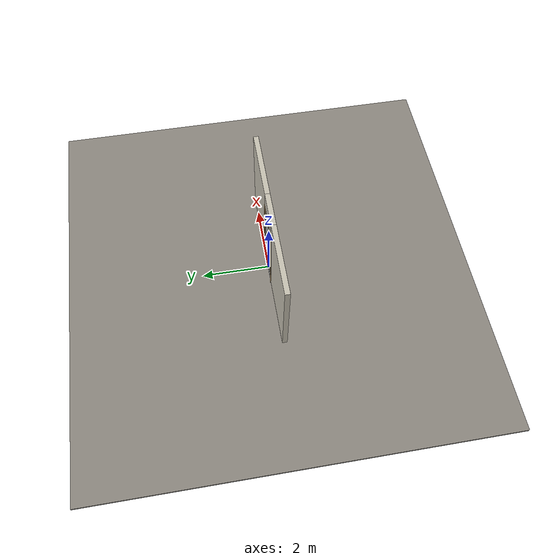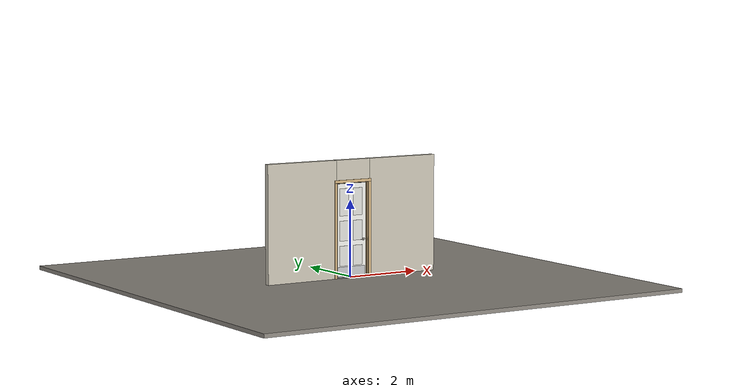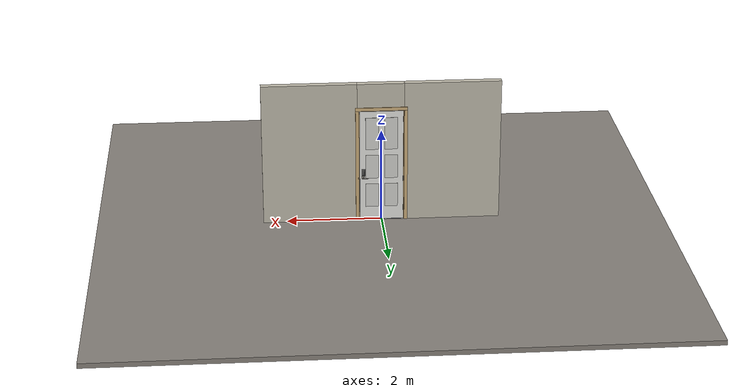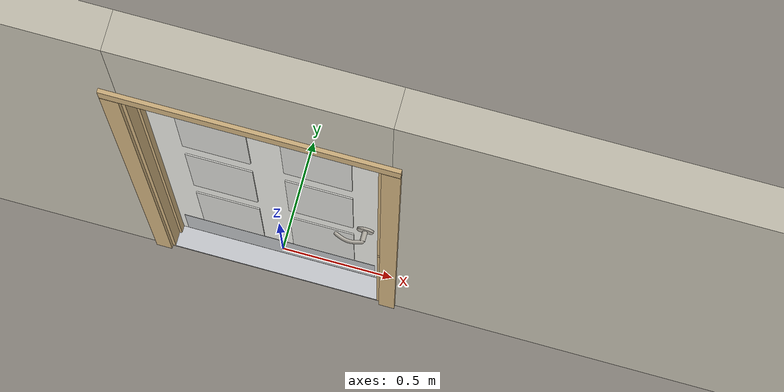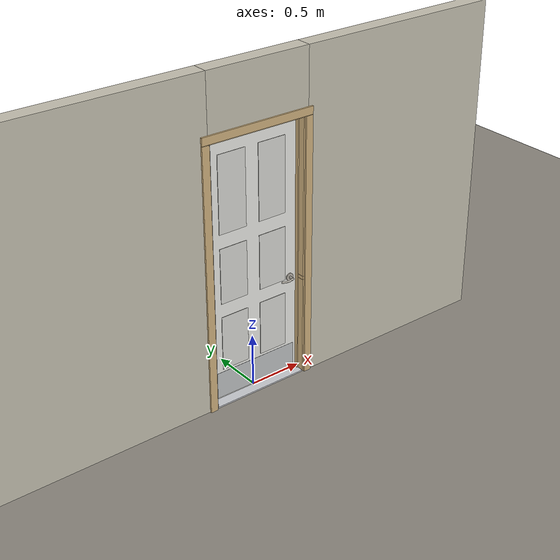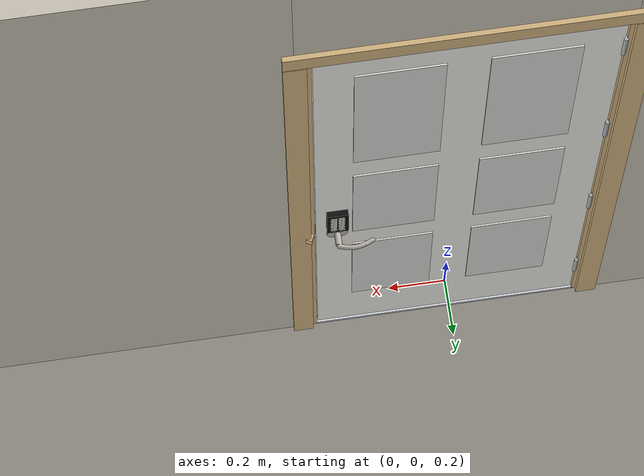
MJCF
<?xml version="1.0" ?>
<mujoco model="db0503_swing_single_full">
  <compiler angle="radian" meshdir="../../hardware" texturedir="../../textures" autolimits="true" inertiafromgeom="false"/>
  <option timestep="0.002" integrator="implicitfast" cone="elliptic" impratio="10" noslip_iterations="3">
    <flag multiccd="enable"/>
  </option>
  <size memory="16M"/>
  <default>
    <geom condim="4" solref="0.005 1" solimp="0.95 0.99 0.001"/>
    <joint solreflimit="0.005 1" solimplimit="0.95 0.99 0.001"/>
    <tendon solreflimit="0.005 1"/>
    <equality solref="0.002 1"/>
  </default>
  <visual>
    <headlight ambient="0.4 0.4 0.4" diffuse="0.7 0.7 0.7" specular="0.2 0.2 0.2"/>
    <quality shadowsize="4096"/>
    <map znear="0.01" zfar="60"/>
  </visual>
  <asset>
    <mesh name="hinge_e22b26c0c1" file="hinge_e22b26c0c1.obj"/>
    <mesh name="hinge_jamb_e1d088f8dc" file="hinge_jamb_e1d088f8dc.obj"/>
    <mesh name="keypad_body_3b2d063948" file="keypad_body_3b2d063948.obj"/>
    <mesh name="lever_a61139b160" file="lever_a61139b160.obj"/>
    <material name="mat_floor" rgba="0.55 0.53 0.5 1" specular="0.2" shininess="0.15" reflectance="0"/>
    <material name="mat_wall" rgba="0.78 0.76 0.7 1" specular="0.2" shininess="0.1" reflectance="0"/>
    <material name="mat_leaf" rgba="0.93 0.93 0.91 1" specular="0.2" shininess="0.34" reflectance="0"/>
    <material name="mat_leaf_panel" rgba="0.856 0.856 0.837 1" specular="0.2" shininess="0.34" reflectance="0"/>
    <material name="mat_hinge" rgba="0.65 0.66 0.68 1" specular="0.74" shininess="0.5" reflectance="0.36"/>
    <material name="mat_op_nickel_satin" rgba="0.72 0.7 0.66 1" specular="0.8" shininess="0.65" reflectance="0.4"/>
    <material name="mat_trim" rgba="0.85 0.66 0.3 1" specular="0.8" shininess="0.75" reflectance="0.4"/>
    <material name="mat_keypad" rgba="0.05 0.05 0.05 1" specular="0.38" shininess="0.3" reflectance="0.12"/>
    <material name="mat_key" rgba="0.85 0.85 0.82 1" specular="0.2" shininess="0.5" reflectance="0"/>
    <material name="mat_bolt" rgba="0.85 0.66 0.3 1" specular="0.8" shininess="0.75" reflectance="0.4"/>
    <material name="mat_frame" rgba="0.82 0.7 0.5 1" specular="0.2" shininess="0.45" reflectance="0"/>
    <material name="mat_seal" rgba="0.1 0.1 0.1 1" specular="0.2" shininess="0.1" reflectance="0"/>
    <material name="mat_threshold" rgba="0.8 0.81 0.83 1" specular="0.8" shininess="0.6" reflectance="0.4"/>
    <material name="mat_kick" rgba="0.75 0.76 0.77 1" specular="0.8" shininess="0.65" reflectance="0.4"/>
    <texture name="skybox" type="skybox" builtin="gradient" rgb1="0.6 0.7 0.85" rgb2="0.9 0.92 0.95" width="256" height="256"/>
  </asset>
  <worldbody>
    <light name="sun" pos="1.5 -2.5 4" dir="-0.3 0.5 -0.8" directional="true" diffuse="0.8 0.8 0.8" specular="0.3 0.3 0.3" castshadow="true"/>
    <light name="fill" pos="-1.5 2.5 3" dir="0.3 -0.5 -0.7" directional="true" diffuse="0.35 0.35 0.4" castshadow="false"/>
    <camera name="robot_view" pos="0 -2.966312 2.043887" xyaxes="1 0 0 0 0.26963 0.962964" fovy="52"/>
    <camera name="far_view" pos="0 2.879313 2.043887" xyaxes="-1 0 0 0 -0.26963 0.962964" fovy="52"/>
    <camera name="iso" pos="2.221337 -2.498663 2.511538" xyaxes="0.741536 0.670913 0 -0.242917 0.268487 0.932151" fovy="46"/>
    <camera name="detail_handle" pos="0.4769 -0.877 1.245" xyaxes="0.97561 0.219512 0 -0.070934 0.315262 0.94635" fovy="38"/>
    <geom name="floor" type="box" size="6 6 0.05" pos="0 0 -0.05" material="mat_floor" group="0" contype="1" conaffinity="1" friction="0.8 0.005 0.0001" density="2400"/>
    <geom name="wall_left" type="box" size="1.01025 0.0725 1.5255" pos="-1.48975 -0.0435 1.5255" material="mat_wall" group="0" contype="1" conaffinity="1" friction="0.6 0.005 0.0001" density="800"/>
    <geom name="wall_right" type="box" size="0.99525 0.0725 1.5255" pos="1.50475 -0.0435 1.5255" material="mat_wall" group="0" contype="1" conaffinity="1" friction="0.6 0.005 0.0001" density="800"/>
    <geom name="wall_header" type="box" size="0.4945 0.0725 0.2755" pos="0.015 -0.0435 2.7755" material="mat_wall" group="0" contype="1" conaffinity="1" friction="0.6 0.005 0.0001" density="800"/>
    <geom name="hinge_0_jamb" type="mesh" mesh="hinge_jamb_e1d088f8dc" pos="-0.4575 0.029 0.267" quat="0 1 0 0" material="mat_hinge" group="1" contype="0" conaffinity="0" density="7850"/>
    <geom name="hinge_1_jamb" type="mesh" mesh="hinge_jamb_e1d088f8dc" pos="-0.4575 0.029 0.933667" quat="0 1 0 0" material="mat_hinge" group="1" contype="0" conaffinity="0" density="7850"/>
    <geom name="hinge_2_jamb" type="mesh" mesh="hinge_jamb_e1d088f8dc" pos="-0.4575 0.029 1.600333" quat="0 1 0 0" material="mat_hinge" group="1" contype="0" conaffinity="0" density="7850"/>
    <geom name="hinge_3_jamb" type="mesh" mesh="hinge_jamb_e1d088f8dc" pos="-0.4575 0.029 2.267" quat="0 1 0 0" material="mat_hinge" group="1" contype="0" conaffinity="0" density="7850"/>
    <geom name="jamb_hinge" type="box" size="0.0095 0.0725 1.2255" pos="-0.47 -0.0435 1.2255" material="mat_frame" group="0" contype="1" conaffinity="1" friction="0.6 0.005 0.0001" density="400"/>
    <geom name="strike_965_wall_n" type="box" size="0.0245 0.054075 0.0167" pos="0.485 -0.061925 0.965" material="mat_frame" group="0" contype="1" conaffinity="1" friction="0.6 0.005 0.0001" density="400"/>
    <geom name="strike_965_wall_p" type="box" size="0.0245 0.008 0.0167" pos="0.485 0.01585 0.965" material="mat_frame" group="0" contype="1" conaffinity="1" friction="0.6 0.005 0.0001" density="400"/>
    <geom name="strike_965_ramp" type="box" size="0.0245 0.01649 0.0167" pos="0.489636 0.028673 0.965" quat="0.977148 0 0 -0.212558" material="mat_frame" group="0" contype="1" conaffinity="1" friction="0.12 0.005 0.0001" density="400"/>
    <geom name="strike_965_back" type="box" size="0.01615 0.00785 0.0167" pos="0.49335 0 0.965" material="mat_frame" group="0" contype="1" conaffinity="1" friction="0.6 0.005 0.0001" density="400"/>
    <geom name="jamb_strike_0" type="box" size="0.0245 0.0725 0.47415" pos="0.485 -0.0435 0.47415" material="mat_frame" group="0" contype="1" conaffinity="1" friction="0.6 0.005 0.0001" density="400"/>
    <geom name="jamb_strike_1" type="box" size="0.0245 0.0725 0.73465" pos="0.485 -0.0435 1.71635" material="mat_frame" group="0" contype="1" conaffinity="1" friction="0.6 0.005 0.0001" density="400"/>
    <geom name="jamb_head" type="box" size="0.4945 0.0725 0.0095" pos="0.015 -0.0435 2.4605" material="mat_frame" group="0" contype="1" conaffinity="1" friction="0.6 0.005 0.0001" density="400"/>
    <geom name="head_stud" type="box" size="0.4945 0.0725 0.015" pos="0.015 -0.0435 2.485" material="mat_wall" group="0" contype="1" conaffinity="1" friction="0.6 0.005 0.0001" density="500"/>
    <geom name="stop_hinge" type="box" size="0.0055 0.016 1.2255" pos="-0.455 -0.0385 1.2255" material="mat_frame" group="0" contype="1" conaffinity="1" friction="0.6 0.005 0.0001" density="400"/>
    <geom name="stop_strike" type="box" size="0.0055 0.016 1.2255" pos="0.455 -0.0385 1.2255" material="mat_frame" group="0" contype="1" conaffinity="1" friction="0.6 0.005 0.0001" density="400"/>
    <geom name="stop_head" type="box" size="0.4605 0.016 0.0055" pos="0 -0.0385 2.4455" material="mat_frame" group="0" contype="1" conaffinity="1" friction="0.6 0.005 0.0001" density="400"/>
    <geom name="seal_hinge" type="box" size="0.004 0.0015 1.2255" pos="-0.4575 -0.0235 1.2255" material="mat_seal" group="1" contype="0" conaffinity="0" density="1100"/>
    <geom name="seal_strike" type="box" size="0.004 0.0015 1.2255" pos="0.4575 -0.0235 1.2255" material="mat_seal" group="1" contype="0" conaffinity="0" density="1100"/>
    <geom name="seal_head" type="box" size="0.4405 0.0015 0.008" pos="0 -0.0235 2.439" material="mat_seal" group="1" contype="0" conaffinity="0" density="1100"/>
    <geom name="casing_l_n" type="box" size="0.035 0.008 1.235" pos="-0.5095 -0.124 1.2255" material="mat_frame" group="2" contype="0" conaffinity="0" density="400"/>
    <geom name="casing_r_n" type="box" size="0.035 0.008 1.235" pos="0.5095 -0.124 1.2255" material="mat_frame" group="2" contype="0" conaffinity="0" density="400"/>
    <geom name="casing_h_n" type="box" size="0.5445 0.008 0.035" pos="0 -0.124 2.5" material="mat_frame" group="2" contype="0" conaffinity="0" density="400"/>
    <geom name="casing_l_p" type="box" size="0.035 0.008 1.235" pos="-0.5095 0.037 1.2255" material="mat_frame" group="2" contype="0" conaffinity="0" density="400"/>
    <geom name="casing_r_p" type="box" size="0.035 0.008 1.235" pos="0.5095 0.037 1.2255" material="mat_frame" group="2" contype="0" conaffinity="0" density="400"/>
    <geom name="casing_h_p" type="box" size="0.5445 0.008 0.035" pos="0 0.037 2.5" material="mat_frame" group="2" contype="0" conaffinity="0" density="400"/>
    <geom name="threshold" type="box" size="0.4795 0.0725 0.0065" pos="0 -0.0435 0.0065" material="mat_threshold" group="0" contype="1" conaffinity="1" friction="0.5 0.005 0.0001" density="2700"/>
    <site name="approach_point" pos="0 -1.5 0" quat="1 0 0 0" size="0.05" rgba="0.2 0.9 0.2 0.5" group="4"/>
    <site name="goal_point" pos="0 1.5 0" quat="1 0 0 0" size="0.05" rgba="0.2 0.9 0.2 0.5" group="4"/>
    <site name="door_plane_center" pos="0 0 1.2255" quat="1 0 0 0" size="0.02" rgba="0.2 0.9 0.2 0.5" group="4"/>
    <body name="leaf" pos="-0.4605 0 0">
      <inertial pos="0.450708 -0.001052 1.131437" mass="28.015384" quat="-0.497454 0.500032 0.501923 0.500581" diaginertia="2.0933994 15.128624736 17.210204509"/>
      <joint name="leaf_hinge" type="hinge" axis="0 0 1" pos="0.003 0.029 0" limited="true" range="0 1.745329" solreflimit="0.02 1" damping="0.357281" frictionloss="7.16398" armature="0.02"/>
      <geom name="leaf_slab" type="box" size="0.457 0.022 1.215" pos="0.46 0 1.232" material="mat_leaf" group="0" contype="1" conaffinity="1" friction="0.4 0.005 0.0001" density="1"/>
      <geom name="leaf_panel_0_n" type="box" size="0.13573 0.003 0.25918" pos="0.25927 -0.025 0.56348" material="mat_leaf_panel" group="1" contype="0" conaffinity="0" density="1"/>
      <geom name="leaf_panel_0_p" type="box" size="0.13573 0.003 0.25918" pos="0.25927 0.025 0.56348" material="mat_leaf_panel" group="1" contype="0" conaffinity="0" density="1"/>
      <geom name="leaf_panel_1_n" type="box" size="0.13573 0.003 0.25918" pos="0.66073 -0.025 0.56348" material="mat_leaf_panel" group="1" contype="0" conaffinity="0" density="1"/>
      <geom name="leaf_panel_1_p" type="box" size="0.13573 0.003 0.25918" pos="0.66073 0.025 0.56348" material="mat_leaf_panel" group="1" contype="0" conaffinity="0" density="1"/>
      <geom name="leaf_panel_2_n" type="box" size="0.13573 0.003 0.25918" pos="0.25927 -0.025 1.21184" material="mat_leaf_panel" group="1" contype="0" conaffinity="0" density="1"/>
      <geom name="leaf_panel_2_p" type="box" size="0.13573 0.003 0.25918" pos="0.25927 0.025 1.21184" material="mat_leaf_panel" group="1" contype="0" conaffinity="0" density="1"/>
      <geom name="leaf_panel_3_n" type="box" size="0.13573 0.003 0.25918" pos="0.66073 -0.025 1.21184" material="mat_leaf_panel" group="1" contype="0" conaffinity="0" density="1"/>
      <geom name="leaf_panel_3_p" type="box" size="0.13573 0.003 0.25918" pos="0.66073 0.025 1.21184" material="mat_leaf_panel" group="1" contype="0" conaffinity="0" density="1"/>
      <geom name="leaf_panel_4_n" type="box" size="0.13573 0.003 0.35224" pos="0.25927 -0.025 1.95326" material="mat_leaf_panel" group="1" contype="0" conaffinity="0" density="1"/>
      <geom name="leaf_panel_4_p" type="box" size="0.13573 0.003 0.35224" pos="0.25927 0.025 1.95326" material="mat_leaf_panel" group="1" contype="0" conaffinity="0" density="1"/>
      <geom name="leaf_panel_5_n" type="box" size="0.13573 0.003 0.35224" pos="0.66073 -0.025 1.95326" material="mat_leaf_panel" group="1" contype="0" conaffinity="0" density="1"/>
      <geom name="leaf_panel_5_p" type="box" size="0.13573 0.003 0.35224" pos="0.66073 0.025 1.95326" material="mat_leaf_panel" group="1" contype="0" conaffinity="0" density="1"/>
      <geom name="hinge_0" type="mesh" mesh="hinge_e22b26c0c1" pos="0.003 0.029 0.267" quat="0 1 0 0" material="mat_hinge" group="1" contype="0" conaffinity="0" density="7850"/>
      <geom name="hinge_1" type="mesh" mesh="hinge_e22b26c0c1" pos="0.003 0.029 0.933667" quat="0 1 0 0" material="mat_hinge" group="1" contype="0" conaffinity="0" density="7850"/>
      <geom name="hinge_2" type="mesh" mesh="hinge_e22b26c0c1" pos="0.003 0.029 1.600333" quat="0 1 0 0" material="mat_hinge" group="1" contype="0" conaffinity="0" density="7850"/>
      <geom name="hinge_3" type="mesh" mesh="hinge_e22b26c0c1" pos="0.003 0.029 2.267" quat="0 1 0 0" material="mat_hinge" group="1" contype="0" conaffinity="0" density="7850"/>
      <geom name="leaf_keypad_body" type="mesh" mesh="keypad_body_3b2d063948" pos="0.847 0.022 1.085" quat="0 0 0.707107 0.707107" material="mat_keypad" group="0" contype="1" conaffinity="1" friction="0.6 0.005 0.0001" density="2000"/>
      <geom name="leaf_latch_bolt_faceplate" type="box" size="0.0006 0.01235 0.0267" pos="0.9164 0 0.965" material="mat_bolt" group="1" contype="0" conaffinity="0" density="8500"/>
      <geom name="kick_plate_n" type="box" size="0.427 0.0008 0.125" pos="0.46 -0.0228 0.152" material="mat_kick" group="2" contype="0" conaffinity="0" density="7900"/>
      <site name="leaf_edge_mid" pos="0.917 0 1.215" quat="1 0 0 0" size="0.02" rgba="0.2 0.9 0.2 0.5" group="4"/>
      <body name="leaf_handle" pos="0.847 0 0.965">
        <inertial pos="-0.022132 -0.050687 0" mass="0.463269" quat="-0.312008 0 0 0.950079" diaginertia="0.000227859 0.000847742 0.000992066"/>
        <joint name="leaf_handle_hinge" type="hinge" axis="0 -1 0" limited="true" range="0 0.87" damping="0.208392" frictionloss="0.052" stiffness="1" springref="-0.35" armature="0.01"/>
        <geom name="leaf_handle_spindle" type="cylinder" size="0.006 0.03" pos="0 0 0" quat="0.707107 -0.707107 0 0" material="mat_op_nickel_satin" group="1" contype="0" conaffinity="0" density="7850"/>
        <geom name="leaf_handle_lever_n" type="mesh" mesh="lever_a61139b160" pos="0 -0.022 0" quat="0.707107 0.707107 0 0" material="mat_op_nickel_satin" group="1" contype="0" conaffinity="0" density="3000"/>
        <geom name="leaf_handle_lever_col_n" type="capsule" size="0.008 0.048" pos="-0.056 -0.077 0" quat="0.707107 0 -0.707107 0" material="mat_op_nickel_satin" group="3" contype="1" conaffinity="1" rgba="0.8 0.3 0.3 0.25" friction="0.7 0.01 0.0001" density="3000"/>
        <geom name="leaf_handle_hub_col_n" type="cylinder" size="0.012 0.022" pos="0 -0.052 0" quat="0.707107 -0.707107 0 0" material="mat_op_nickel_satin" group="3" contype="1" conaffinity="1" rgba="0.8 0.3 0.3 0.25" friction="0.6 0.005 0.0001" density="3000"/>
        <site name="leaf_handle_grip_n" pos="-0.0896 -0.077 0" quat="1 0 0 0" size="0.012" rgba="0.2 0.9 0.2 0.5" group="4"/>
      </body>
      <body name="leaf_keypad_key_1" pos="0.86 0.042 1.133">
        <inertial pos="0 0.0015 0" mass="0.001008" quat="0 0 0.707107 0.707107" diaginertia="0.000000017 0.000000034 0.00000005"/>
        <joint name="leaf_keypad_key_1_slide" type="slide" axis="0 -1 0" limited="true" range="0 0.0015" damping="14" frictionloss="0.05" stiffness="1000" springref="-0.0015" armature="0.1"/>
        <geom name="leaf_keypad_key_1_geom" type="box" size="0.01 0.0015 0.007" pos="0 0.0015 0" material="mat_key" group="0" contype="1" conaffinity="1" friction="0.6 0.005 0.0001" density="1200"/>
        <site name="leaf_keypad_key_1_press" pos="0 0.005 0" quat="1 0 0 0" size="0.008" rgba="0.2 0.9 0.2 0.5" group="4"/>
      </body>
      <body name="leaf_keypad_key_2" pos="0.834 0.042 1.133">
        <inertial pos="0 0.0015 0" mass="0.001008" quat="0 0 0.707107 0.707107" diaginertia="0.000000017 0.000000034 0.00000005"/>
        <joint name="leaf_keypad_key_2_slide" type="slide" axis="0 -1 0" limited="true" range="0 0.0015" damping="14" frictionloss="0.05" stiffness="1000" springref="-0.0015" armature="0.1"/>
        <geom name="leaf_keypad_key_2_geom" type="box" size="0.01 0.0015 0.007" pos="0 0.0015 0" material="mat_key" group="0" contype="1" conaffinity="1" friction="0.6 0.005 0.0001" density="1200"/>
        <site name="leaf_keypad_key_2_press" pos="0 0.005 0" quat="1 0 0 0" size="0.008" rgba="0.2 0.9 0.2 0.5" group="4"/>
      </body>
      <body name="leaf_keypad_key_3" pos="0.86 0.042 1.109">
        <inertial pos="0 0.0015 0" mass="0.001008" quat="0 0 0.707107 0.707107" diaginertia="0.000000017 0.000000034 0.00000005"/>
        <joint name="leaf_keypad_key_3_slide" type="slide" axis="0 -1 0" limited="true" range="0 0.0015" damping="14" frictionloss="0.05" stiffness="1000" springref="-0.0015" armature="0.1"/>
        <geom name="leaf_keypad_key_3_geom" type="box" size="0.01 0.0015 0.007" pos="0 0.0015 0" material="mat_key" group="0" contype="1" conaffinity="1" friction="0.6 0.005 0.0001" density="1200"/>
        <site name="leaf_keypad_key_3_press" pos="0 0.005 0" quat="1 0 0 0" size="0.008" rgba="0.2 0.9 0.2 0.5" group="4"/>
      </body>
      <body name="leaf_keypad_key_4" pos="0.834 0.042 1.109">
        <inertial pos="0 0.0015 0" mass="0.001008" quat="0 0 0.707107 0.707107" diaginertia="0.000000017 0.000000034 0.00000005"/>
        <joint name="leaf_keypad_key_4_slide" type="slide" axis="0 -1 0" limited="true" range="0 0.0015" damping="14" frictionloss="0.05" stiffness="1000" springref="-0.0015" armature="0.1"/>
        <geom name="leaf_keypad_key_4_geom" type="box" size="0.01 0.0015 0.007" pos="0 0.0015 0" material="mat_key" group="0" contype="1" conaffinity="1" friction="0.6 0.005 0.0001" density="1200"/>
        <site name="leaf_keypad_key_4_press" pos="0 0.005 0" quat="1 0 0 0" size="0.008" rgba="0.2 0.9 0.2 0.5" group="4"/>
      </body>
      <body name="leaf_keypad_key_5" pos="0.86 0.042 1.085">
        <inertial pos="0 0.0015 0" mass="0.001008" quat="0 0 0.707107 0.707107" diaginertia="0.000000017 0.000000034 0.00000005"/>
        <joint name="leaf_keypad_key_5_slide" type="slide" axis="0 -1 0" limited="true" range="0 0.0015" damping="14" frictionloss="0.05" stiffness="1000" springref="-0.0015" armature="0.1"/>
        <geom name="leaf_keypad_key_5_geom" type="box" size="0.01 0.0015 0.007" pos="0 0.0015 0" material="mat_key" group="0" contype="1" conaffinity="1" friction="0.6 0.005 0.0001" density="1200"/>
        <site name="leaf_keypad_key_5_press" pos="0 0.005 0" quat="1 0 0 0" size="0.008" rgba="0.2 0.9 0.2 0.5" group="4"/>
      </body>
      <body name="leaf_keypad_key_6" pos="0.834 0.042 1.085">
        <inertial pos="0 0.0015 0" mass="0.001008" quat="0 0 0.707107 0.707107" diaginertia="0.000000017 0.000000034 0.00000005"/>
        <joint name="leaf_keypad_key_6_slide" type="slide" axis="0 -1 0" limited="true" range="0 0.0015" damping="14" frictionloss="0.05" stiffness="1000" springref="-0.0015" armature="0.1"/>
        <geom name="leaf_keypad_key_6_geom" type="box" size="0.01 0.0015 0.007" pos="0 0.0015 0" material="mat_key" group="0" contype="1" conaffinity="1" friction="0.6 0.005 0.0001" density="1200"/>
        <site name="leaf_keypad_key_6_press" pos="0 0.005 0" quat="1 0 0 0" size="0.008" rgba="0.2 0.9 0.2 0.5" group="4"/>
      </body>
      <body name="leaf_keypad_key_7" pos="0.86 0.042 1.061">
        <inertial pos="0 0.0015 0" mass="0.001008" quat="0 0 0.707107 0.707107" diaginertia="0.000000017 0.000000034 0.00000005"/>
        <joint name="leaf_keypad_key_7_slide" type="slide" axis="0 -1 0" limited="true" range="0 0.0015" damping="14" frictionloss="0.05" stiffness="1000" springref="-0.0015" armature="0.1"/>
        <geom name="leaf_keypad_key_7_geom" type="box" size="0.01 0.0015 0.007" pos="0 0.0015 0" material="mat_key" group="0" contype="1" conaffinity="1" friction="0.6 0.005 0.0001" density="1200"/>
        <site name="leaf_keypad_key_7_press" pos="0 0.005 0" quat="1 0 0 0" size="0.008" rgba="0.2 0.9 0.2 0.5" group="4"/>
      </body>
      <body name="leaf_keypad_key_8" pos="0.834 0.042 1.061">
        <inertial pos="0 0.0015 0" mass="0.001008" quat="0 0 0.707107 0.707107" diaginertia="0.000000017 0.000000034 0.00000005"/>
        <joint name="leaf_keypad_key_8_slide" type="slide" axis="0 -1 0" limited="true" range="0 0.0015" damping="14" frictionloss="0.05" stiffness="1000" springref="-0.0015" armature="0.1"/>
        <geom name="leaf_keypad_key_8_geom" type="box" size="0.01 0.0015 0.007" pos="0 0.0015 0" material="mat_key" group="0" contype="1" conaffinity="1" friction="0.6 0.005 0.0001" density="1200"/>
        <site name="leaf_keypad_key_8_press" pos="0 0.005 0" quat="1 0 0 0" size="0.008" rgba="0.2 0.9 0.2 0.5" group="4"/>
      </body>
      <body name="leaf_keypad_key_9" pos="0.86 0.042 1.037">
        <inertial pos="0 0.0015 0" mass="0.001008" quat="0 0 0.707107 0.707107" diaginertia="0.000000017 0.000000034 0.00000005"/>
        <joint name="leaf_keypad_key_9_slide" type="slide" axis="0 -1 0" limited="true" range="0 0.0015" damping="14" frictionloss="0.05" stiffness="1000" springref="-0.0015" armature="0.1"/>
        <geom name="leaf_keypad_key_9_geom" type="box" size="0.01 0.0015 0.007" pos="0 0.0015 0" material="mat_key" group="0" contype="1" conaffinity="1" friction="0.6 0.005 0.0001" density="1200"/>
        <site name="leaf_keypad_key_9_press" pos="0 0.005 0" quat="1 0 0 0" size="0.008" rgba="0.2 0.9 0.2 0.5" group="4"/>
      </body>
      <body name="leaf_keypad_key_0" pos="0.834 0.042 1.037">
        <inertial pos="0 0.0015 0" mass="0.001008" quat="0 0 0.707107 0.707107" diaginertia="0.000000017 0.000000034 0.00000005"/>
        <joint name="leaf_keypad_key_0_slide" type="slide" axis="0 -1 0" limited="true" range="0 0.0015" damping="14" frictionloss="0.05" stiffness="1000" springref="-0.0015" armature="0.1"/>
        <geom name="leaf_keypad_key_0_geom" type="box" size="0.01 0.0015 0.007" pos="0 0.0015 0" material="mat_key" group="0" contype="1" conaffinity="1" friction="0.6 0.005 0.0001" density="1200"/>
        <site name="leaf_keypad_key_0_press" pos="0 0.005 0" quat="1 0 0 0" size="0.008" rgba="0.2 0.9 0.2 0.5" group="4"/>
      </body>
      <body name="leaf_handle_out" pos="0.847 0 0.965">
        <inertial pos="-0.025007 0.057273 0" mass="0.41" quat="0.235955 0 0 0.971764" diaginertia="0.000156759 0.000717302 0.000791484"/>
        <joint name="leaf_handle_out_hinge" type="hinge" axis="0 -1 0" limited="true" range="0 0.07" damping="0.208382" frictionloss="0.052" stiffness="1" springref="-0.35" armature="0.01"/>
        <geom name="leaf_handle_out_lever_p" type="mesh" mesh="lever_a61139b160" pos="0 0.022 0" quat="-0.707107 0.707107 0 0" material="mat_op_nickel_satin" group="1" contype="0" conaffinity="0" density="3000"/>
        <geom name="leaf_handle_out_lever_col_p" type="capsule" size="0.008 0.048" pos="-0.056 0.077 0" quat="0.707107 0 -0.707107 0" material="mat_op_nickel_satin" group="3" contype="1" conaffinity="1" rgba="0.8 0.3 0.3 0.25" friction="0.7 0.01 0.0001" density="3000"/>
        <geom name="leaf_handle_out_hub_col_p" type="cylinder" size="0.012 0.022" pos="0 0.052 0" quat="0.707107 -0.707107 0 0" material="mat_op_nickel_satin" group="3" contype="1" conaffinity="1" rgba="0.8 0.3 0.3 0.25" friction="0.6 0.005 0.0001" density="3000"/>
        <site name="leaf_handle_out_grip_p" pos="-0.0896 0.077 0" quat="1 0 0 0" size="0.012" rgba="0.2 0.9 0.2 0.5" group="4"/>
      </body>
      <body name="leaf_latch_bolt" pos="0.917 0 0.965">
        <inertial pos="-0.00865 0 0" mass="0.041419" quat="0.92388 -0.382683 0 0" diaginertia="0.000000798 0.000005598 0.000005598"/>
        <joint name="leaf_latch_bolt_slide" type="slide" axis="-1 0 0" limited="true" range="0 0.0127" damping="2" frictionloss="0.3" stiffness="300" springref="-0.008333" armature="0.1"/>
        <geom name="leaf_latch_bolt_capsule" type="capsule" size="0.00635 0.015" pos="-0.00865 0 0" quat="0.707107 0 0.707107 0" material="mat_bolt" group="0" contype="1" conaffinity="1" friction="0.2 0.005 0.0001" density="8500"/>
      </body>
    </body>
  </worldbody>
  <tendon>
    <fixed name="leaf_latch_bolt_coupling" limited="true" range="0 10">
      <joint joint="leaf_latch_bolt_slide" coef="1"/>
      <joint joint="leaf_handle_hinge" coef="-0.015679"/>
      <joint joint="leaf_handle_out_hinge" coef="-0.015679"/>
    </fixed>
  </tendon>
  <sensor>
    <jointpos name="leaf_hinge_pos" joint="leaf_hinge"/>
    <jointvel name="leaf_hinge_vel" joint="leaf_hinge"/>
    <jointpos name="leaf_handle_hinge_pos" joint="leaf_handle_hinge"/>
    <jointvel name="leaf_handle_hinge_vel" joint="leaf_handle_hinge"/>
    <jointpos name="leaf_keypad_key_1_slide_pos" joint="leaf_keypad_key_1_slide"/>
    <jointvel name="leaf_keypad_key_1_slide_vel" joint="leaf_keypad_key_1_slide"/>
    <jointpos name="leaf_keypad_key_2_slide_pos" joint="leaf_keypad_key_2_slide"/>
    <jointvel name="leaf_keypad_key_2_slide_vel" joint="leaf_keypad_key_2_slide"/>
    <jointpos name="leaf_keypad_key_3_slide_pos" joint="leaf_keypad_key_3_slide"/>
    <jointvel name="leaf_keypad_key_3_slide_vel" joint="leaf_keypad_key_3_slide"/>
    <jointpos name="leaf_keypad_key_4_slide_pos" joint="leaf_keypad_key_4_slide"/>
    <jointvel name="leaf_keypad_key_4_slide_vel" joint="leaf_keypad_key_4_slide"/>
    <jointpos name="leaf_keypad_key_5_slide_pos" joint="leaf_keypad_key_5_slide"/>
    <jointvel name="leaf_keypad_key_5_slide_vel" joint="leaf_keypad_key_5_slide"/>
    <jointpos name="leaf_keypad_key_6_slide_pos" joint="leaf_keypad_key_6_slide"/>
    <jointvel name="leaf_keypad_key_6_slide_vel" joint="leaf_keypad_key_6_slide"/>
    <jointpos name="leaf_keypad_key_7_slide_pos" joint="leaf_keypad_key_7_slide"/>
    <jointvel name="leaf_keypad_key_7_slide_vel" joint="leaf_keypad_key_7_slide"/>
    <jointpos name="leaf_keypad_key_8_slide_pos" joint="leaf_keypad_key_8_slide"/>
    <jointvel name="leaf_keypad_key_8_slide_vel" joint="leaf_keypad_key_8_slide"/>
    <jointpos name="leaf_keypad_key_9_slide_pos" joint="leaf_keypad_key_9_slide"/>
    <jointvel name="leaf_keypad_key_9_slide_vel" joint="leaf_keypad_key_9_slide"/>
    <jointpos name="leaf_keypad_key_0_slide_pos" joint="leaf_keypad_key_0_slide"/>
    <jointvel name="leaf_keypad_key_0_slide_vel" joint="leaf_keypad_key_0_slide"/>
    <jointpos name="leaf_handle_out_hinge_pos" joint="leaf_handle_out_hinge"/>
    <jointvel name="leaf_handle_out_hinge_vel" joint="leaf_handle_out_hinge"/>
    <jointpos name="leaf_latch_bolt_slide_pos" joint="leaf_latch_bolt_slide"/>
    <jointvel name="leaf_latch_bolt_slide_vel" joint="leaf_latch_bolt_slide"/>
  </sensor>
</mujoco>
